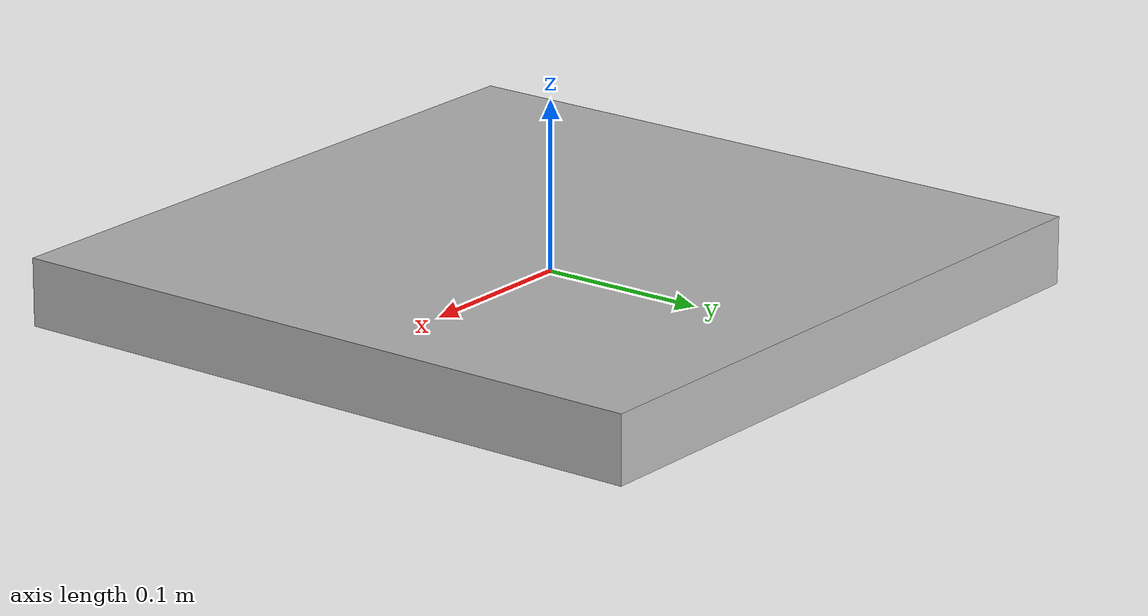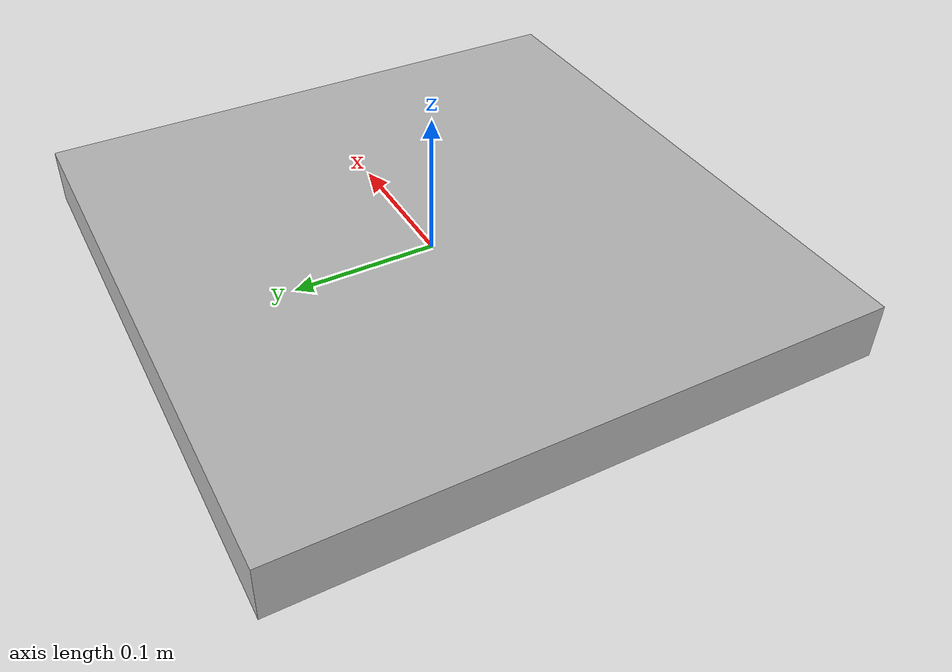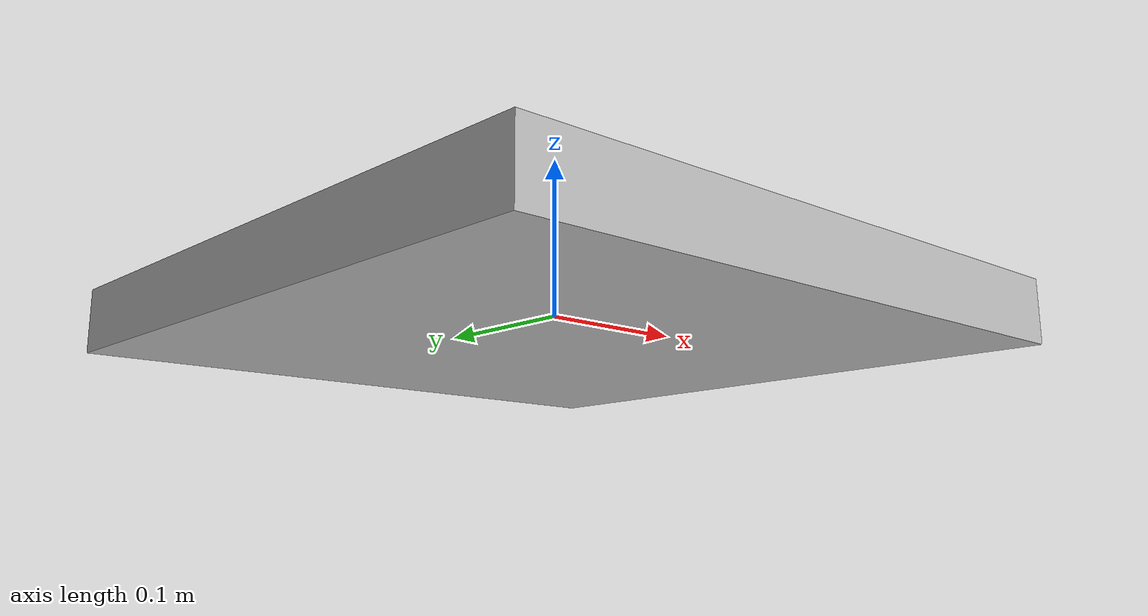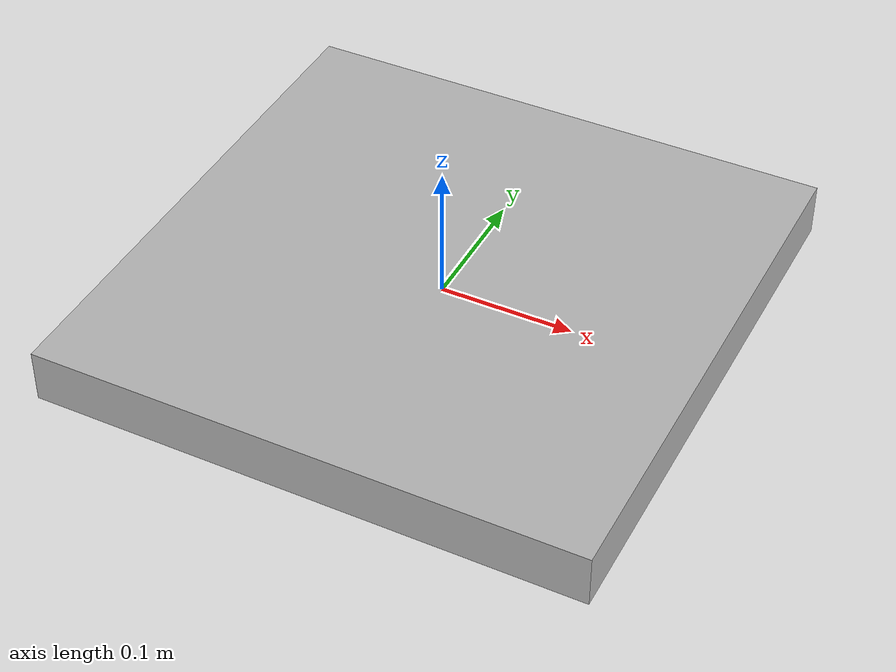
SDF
<?xml version="1.0" ?>
<sdf version="1.9">
  <model name="aruco_board_ign">
    <static>true</static>
    <link name="link">
      <visual name="visual">
        <geometry>
          <mesh>
            <uri>model://aruco_board_ign/meshes/marker.dae</uri>
            <scale>2 2 2</scale> <!-- Adjust the scale here -->
          </mesh>
        </geometry>
      </visual>
    </link>
  </model>
</sdf>
